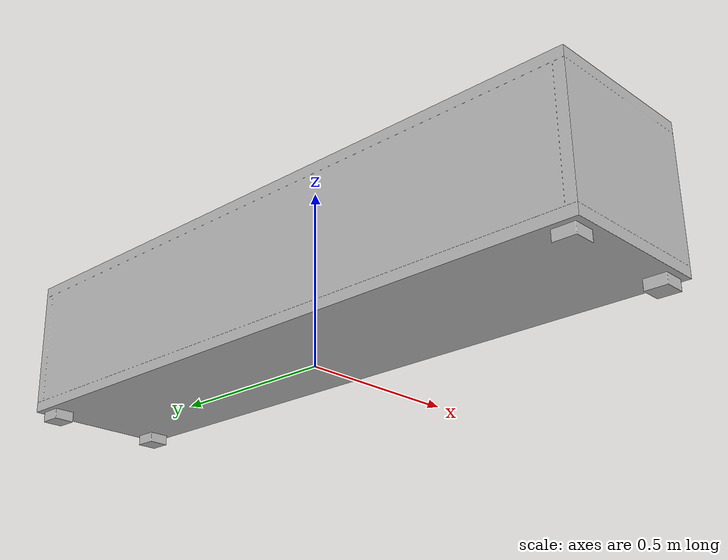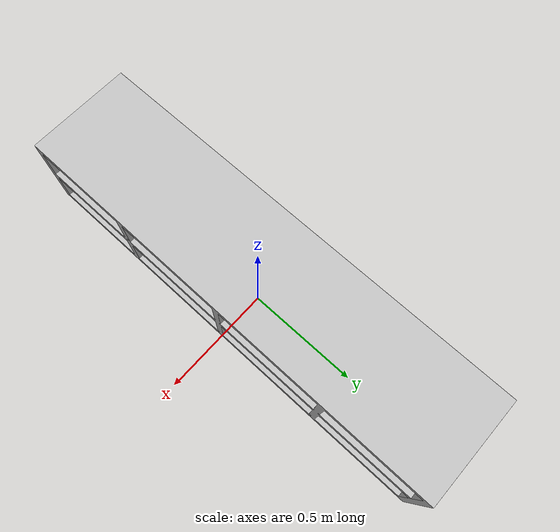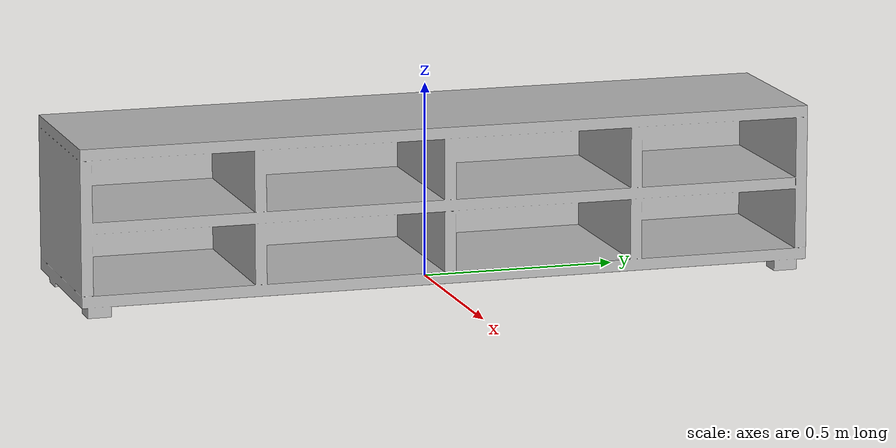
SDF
<?xml version='1.0'?>
<sdf version='1.4'>
  <model name='115'>
    <pose>0 0 0 0 0 0</pose>
    <static>true</static>
    <link name='link'>
      <collision name='collision'>
        <pose>0 0 0 0 0 0</pose>
        <geometry>
          <box>
            <size>0.45 1.90002 2</size>
          </box>
        </geometry>
      </collision>
      <visual name='visual'>
        <pose>0 0 0 0 0 0</pose>
        <geometry>
          <mesh><uri>model://115/115.dae</uri></mesh>
        </geometry>
      </visual>
    </link>
  </model>
</sdf>
